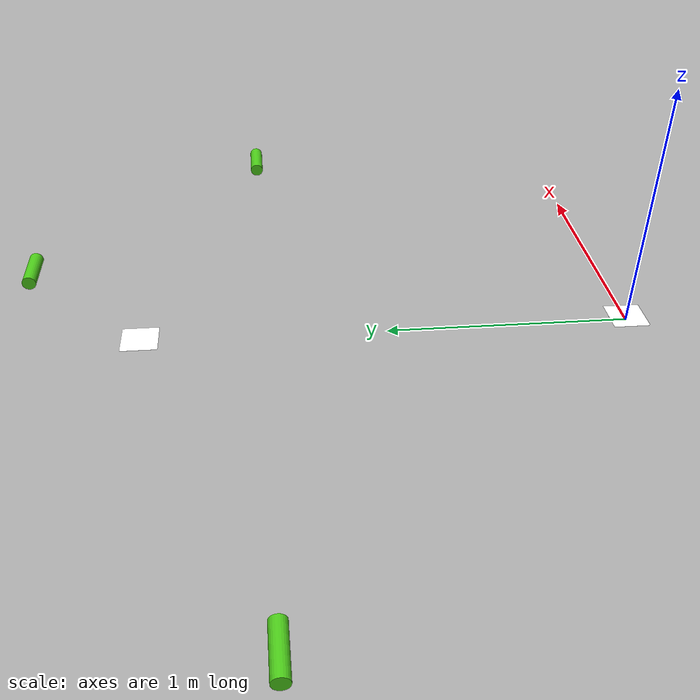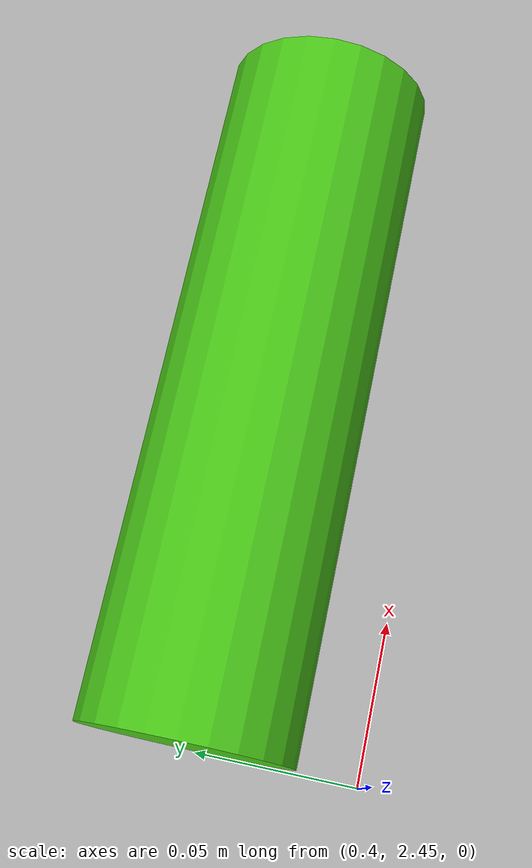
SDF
<sdf version="1.9">
 <world name="map">
  <physics name="1ms" type="ignore">
   <max_step_size>0.001</max_step_size>
   <real_time_factor>1.0</real_time_factor>
  </physics>
  <plugin filename="gz-sim-physics-system" name="gz::sim::systems::Physics"/>
  <plugin filename="gz-sim-sensors-system" name="gz::sim::systems::Sensors">
   <render_engine>ogre2</render_engine>
  </plugin>
  <plugin filename="gz-sim-user-commands-system" name="gz::sim::systems::UserCommands"/>
  <plugin filename="gz-sim-scene-broadcaster-system" name="gz::sim::systems::SceneBroadcaster"/>
  <plugin filename="gz-sim-air-pressure-system" name="gz::sim::systems::AirPressure"/>
  <plugin filename="gz-sim-air-speed-system" name="gz::sim::systems::AirSpeed"/>
  <plugin filename="gz-sim-altimeter-system" name="gz::sim::systems::Altimeter"/>
  <plugin filename="gz-sim-imu-system" name="gz::sim::systems::Imu"/>
  <plugin filename="gz-sim-magnetometer-system" name="gz::sim::systems::Magnetometer"/>
  <plugin filename="gz-sim-navsat-system" name="gz::sim::systems::NavSat"/>
  <scene><ambient>1.0 1.0 1.0</ambient><background>0.8 0.8 0.8</background></scene>
  <light type="directional" name="sun">
   <pose>0 0 10 0 0 0</pose>
   <diffuse>1.0 1.0 1.0 1</diffuse>
   <specular>1.0 1.0 1.0 1</specular>
   <attenuation>
    <range>1000</range>
    <constant>0.9</constant>
    <linear>0.01</linear>
    <quadratic>0.001</quadratic>
   </attenuation>
   <direction>-0.5 0.1 -0.9</direction>
  </light>
  <spherical_coordinates>
   <latitude_deg>-35.3632621</latitude_deg>
   <longitude_deg>149.1652374</longitude_deg>
   <elevation>10.0</elevation>
   <heading_deg>0</heading_deg>
   <surface_model>EARTH_WGS84</surface_model>
  </spherical_coordinates>
  <include><name>aruco_tag1</name><pose>0 2.0 0.02 0 0 0</pose><uri>model://aruco_tag_model102</uri></include>
  <include><name>aruco_tag2</name><pose>0 0 0.02 0 0 0</pose><uri>model://aruco_tag_model101</uri></include>
  <include><name>green_cylinder_1</name><uri>model://probes</uri><pose>1.5 1.5 0.05 0 1.5708 0</pose></include>
  <include><name>green_cylinder_2</name><uri>model://probes</uri><pose>-1.5 1.5 0.05 0 1.5708 0</pose></include>
  <include><name>green_cylinder_3</name><uri>model://probes</uri><pose>0.5 2.5 0.05 0 1.5708 0</pose></include>
 </world>
</sdf>

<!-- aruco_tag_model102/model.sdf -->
<sdf version="1.9">
  <model name="aruco_default">
    <static>true</static>
    <link name="aruco_link">
      <visual name="aruco_visual">
        <geometry>
          <plane>
            <normal>0 0 1</normal>
            <size>0.15 0.15</size>
          </plane>
        </geometry>
        <material>
          <diffuse>1 1 1 1</diffuse>
          <specular>0.4 0.4 0.4 1</specular>
          <pbr>
            <metal>
              <albedo_map>materials/textures/aruco_102.png</albedo_map>
            </metal>
          </pbr>
        </material>
      </visual>
    </link>
  </model>
</sdf>

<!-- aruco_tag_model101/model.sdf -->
<sdf version="1.9">
  <model name="aruco_default">
    <static>true</static>
    <link name="aruco_link">
      <visual name="aruco_visual">
        <geometry>
          <plane>
            <normal>0 0 1</normal>
            <size>0.15 0.15</size>
          </plane>
        </geometry>
        <material>
          <diffuse>1 1 1 1</diffuse>
          <specular>0.4 0.4 0.4 1</specular>
          <pbr>
            <metal>
              <albedo_map>materials/textures/aruco_101.png</albedo_map>
            </metal>
          </pbr>
        </material>
      </visual>
    </link>
  </model>
</sdf>

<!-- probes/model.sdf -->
<sdf version="1.7">
  <model name="green_cylinder">
    <static>true</static> <link name="link">
      <collision name="collision">
        <geometry>
          <cylinder>
            <radius>0.03</radius>
            <length>0.2</length>
          </cylinder>
        </geometry>
      </collision>
      <visual name="visual">
        <geometry>
          <cylinder>
            <radius>0.03</radius>
            <length>0.2</length>
          </cylinder>
        </geometry>
        <material>
          <diffuse>0.3 0.8 0.1 1.0</diffuse> <ambient>0.3 0.8 0.1 1.0</ambient>
        </material>
      </visual>
    </link>
  </model>
</sdf>
